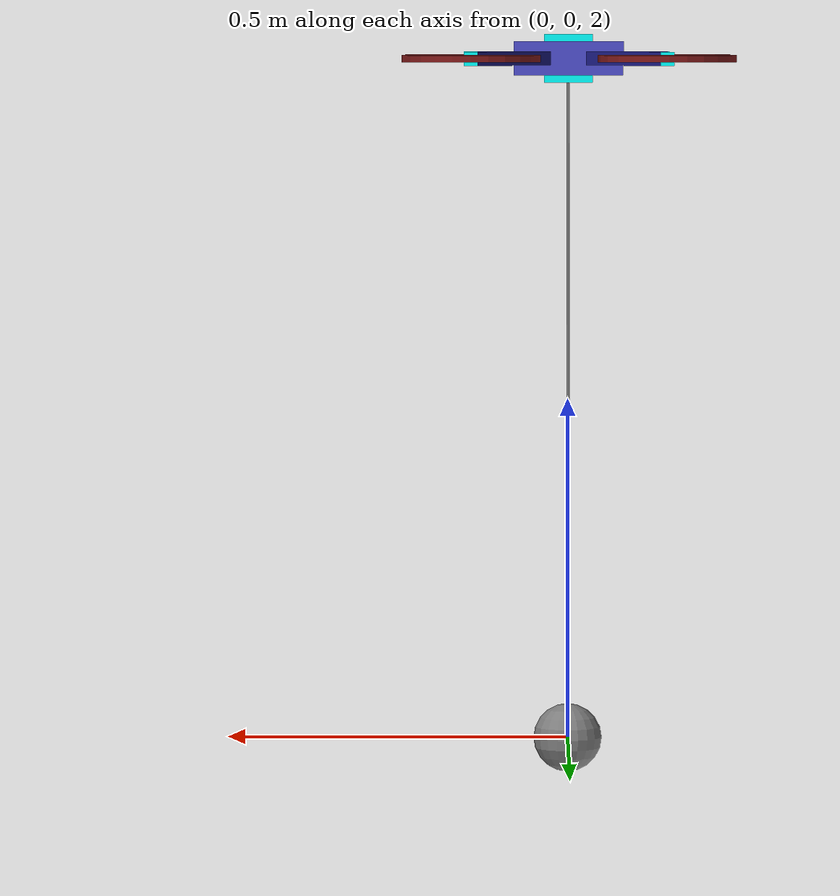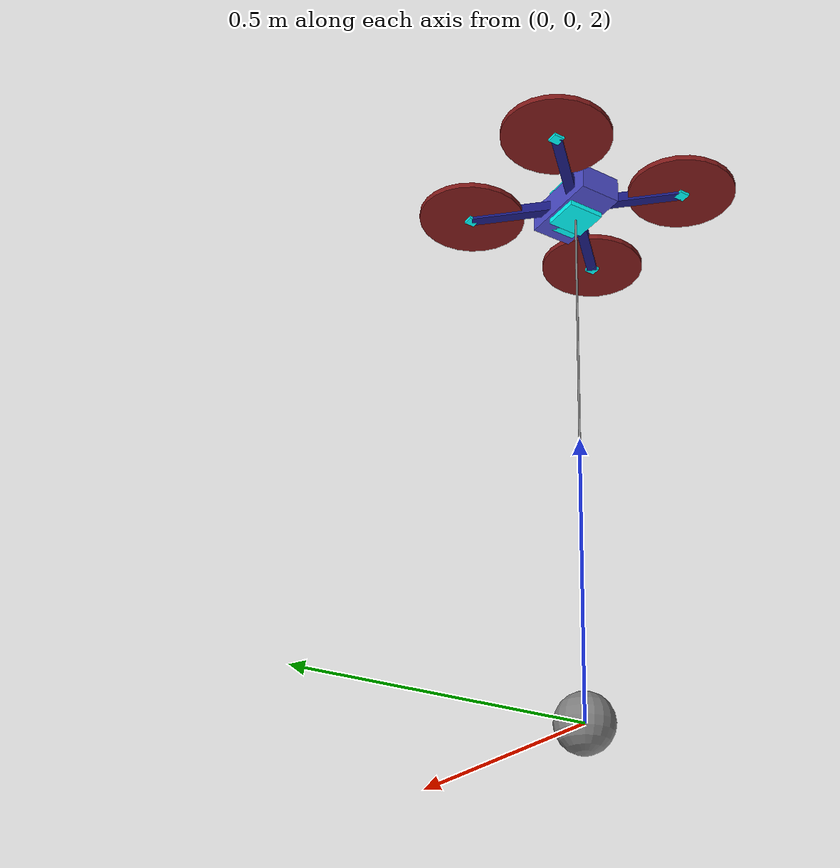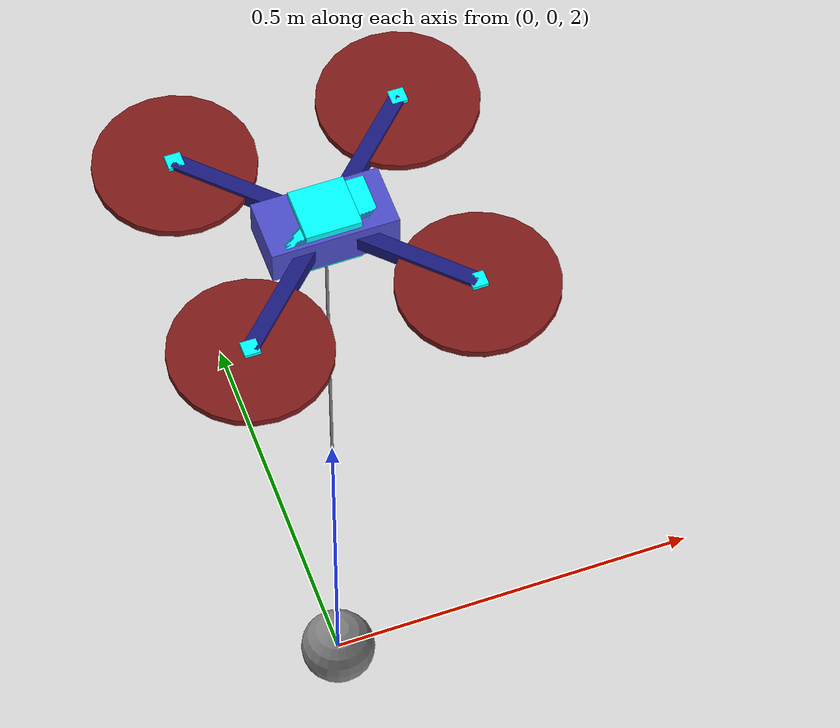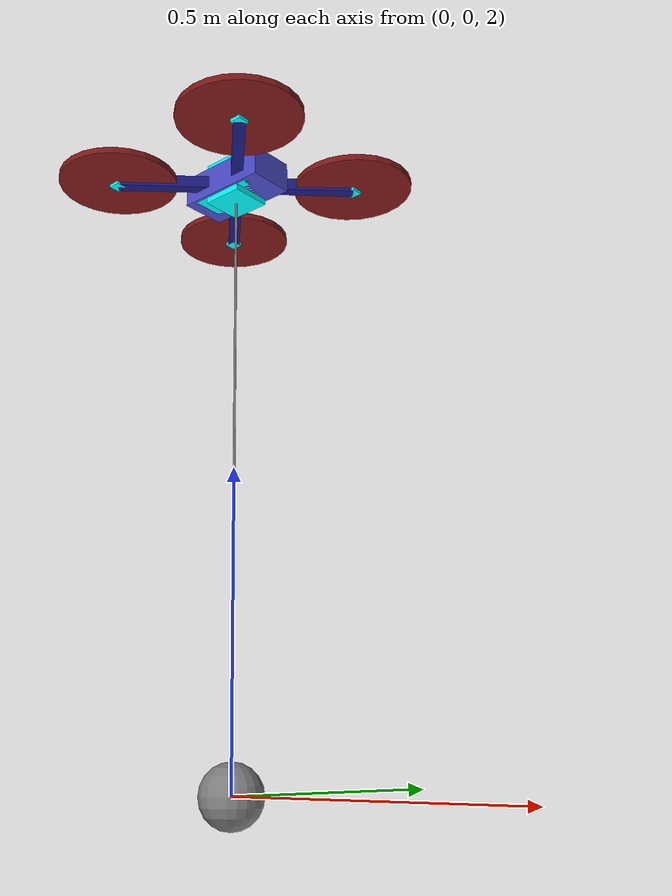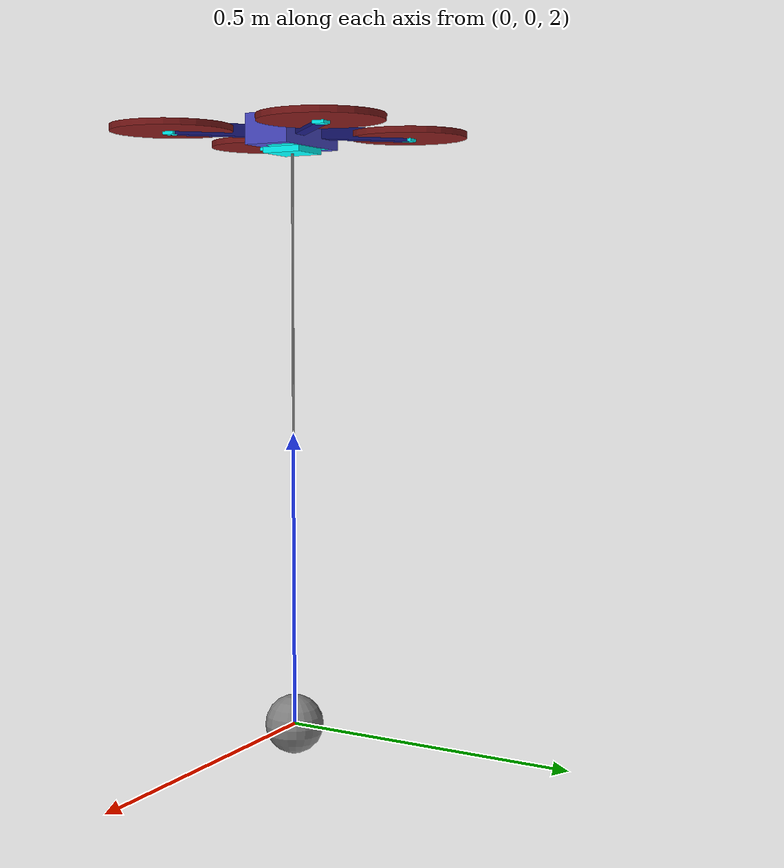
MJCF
<?xml version="1.0"?>
<mujoco model="QuadPayload">
	<option	timestep="0.01" gravity="0 0 -9.81" wind="0 0 0" density="1" viscosity="1e-5" />
  <compiler angle="degree" coordinate="local" inertiafromgeom="false" />
  <visual>
    <map fogstart="3.0" fogend="5.0" force="0.1" znear="0.1" />
  </visual>
  <asset>
    <texture type="skybox" builtin="gradient" rgb1="1.0 1.0 1.0" rgb2="0.6 0.8 1.0" width="256" height="256" />
  </asset>
  <worldbody>
    <geom name="ground" type="plane" size="5.0 5.0 0.02" friction="1.0" pos="0.0 0.0 0.0" rgba="0.8 0.9 0.8 1.0" />
    <light directional="true" diffuse=".9 .9 .9" specular=".3 .3 .3" pos="0 0 4.0" dir="0 0.15 -1" />
    <body name="quadrotor" pos="0.0 0.0 3.0" quat="1 0 0 0">
      <inertial pos="0. 0. 0." mass="0.75" diaginertia="0.0053 0.0049 0.0098" />
      <geom name="geom" type="box" pos="0.0 0.0 0.0" quat="1 0 0 0" size="0.08 0.04 0.025"
        rgba="0.3 0.3 0.8 1.0" />
      <site name="end1" pos="0.0 0 0.0" type="sphere" size="0.01" />
      <joint name="root_joint" type="free" limited="false" pos="0.0 0.0 0.0" axis="0.0 0.0 1.0"
        range="-1.0 1.0" armature="0.0" damping="0.0" stiffness="0.0" />

      <geom name="rotor_arm_geom_0" type="box" pos="0.0 0.0 0.0" quat="0.92388 0 0 0.382683"
        size="0.2 0.01 0.01" rgba="0.1 0.1 0.5 1.0" />
      <geom name="rotor_prop_geom_0" type="cylinder" size="0.1 0.005"
        pos="0.1414213562373095 0.14142135623730953 0.0" rgba="0.5 0.1 0.1 1.0" />

      <geom name="rotor_arm_geom_1" type="box" pos="0.0 0.0 0.0" quat="0.382683 0 0 0.92388"
        size="0.2 0.01 0.01" rgba="0.1 0.1 0.5 1.0" />
      <geom name="rotor_prop_geom_1" type="cylinder" size="0.1 0.005"
        pos="-0.1414213562373095 0.14142135623730953 0.0" rgba="0.5 0.1 0.1 1.0" />

      <geom name="rotor_arm_geom_2" type="box" pos="0.0 0.0 0.0" quat="-0.382683 0 0 0.92388"
        size="0.2 0.01 0.01" rgba="0.1 0.1 0.5 1.0" />
      <geom name="rotor_prop_geom_2" type="cylinder" size="0.1 0.005"
        pos="-0.1414213562373095 -0.1414213562373095 0.0" rgba="0.5 0.1 0.1 1.0" />

      <geom name="rotor_arm_geom_3" type="box" pos="0.0 0.0 0.0" quat="-0.92388 0 0 0.382683"
        size="0.2 0.01 0.01" rgba="0.1 0.1 0.5 1.0" />
      <geom name="rotor_prop_geom_3" type="cylinder" size="0.1 0.005"
        pos="0.1414213562373095 -0.14142135623730953 0.0" rgba="0.5 0.1 0.1 1.0" />

      <site name="site0" type="box" pos="0.1414213562373095 0.14142135623730953 0.0" quat="1 0 0 0"
        size="0.01 0.01 0.01" rgba="0.0 1 1 1.0" />
      <site name="site1" type="box" pos="-0.1414213562373095 0.14142135623730953 0.0" quat="1 0 0 0"
        size="0.01 0.01 0.01" rgba="0.0 1 1 1.0" />
      <site name="site2" type="box" pos="-0.1414213562373095 -0.1414213562373095 0.0" quat="1 0 0 0"
        size="0.01 0.01 0.01" rgba="0.0 1 1 1.0" />
      <site name="site3" type="box" pos="0.14142135623730948 -0.14142135623730956 0.0"
        quat="1 0 0 0" size="0.01 0.01 0.01" rgba="0.0 1 1 1.0" />
      <site name="quadrotor_thrust" type="box" pos="0.0 0.0 0.0" quat="1 0 0 0"
        size="0.035 0.035 0.035" rgba="0.0 1 1 1.0" />
      <site name="quadrotor_Mx" type="box" pos="0.0 0.0 0.0" quat="1 0 0 0" size="0.06 0.035 0.025"
        rgba="0.0 1 1 1.0" />
      <site name="quadrotor_My" type="box" pos="0.0 0.0 0.0" quat="1 0 0 0" size="0.06 0.035 0.025"
        rgba="0.0 1 1 1.0" />
      <site name="quadrotor_Mz" type="box" pos="0.0 0.0 0.0" quat="1 0 0 0" size="0.06 0.035 0.025"
        rgba="0.0 1 1 1.0" />
    </body>
    <body name="payload" pos="0.0 0.0 2.0" quat="1 0 0 0">
      <inertial pos="0. 0. 0." mass="0.15" diaginertia="0.00015 0.00015 0.00015" />
      <geom type="sphere" pos="0. 0. 0.0" size="0.05" />
      <site name="end2" pos="0.0 0 0.0" type="sphere" size="0.01" />
      <joint type="free" />
    </body>
  </worldbody>
  <actuator>
    <motor ctrllimited="true"
      site="quadrotor_thrust" ctrlrange="0.0 40.0" gear="0.0 0.0 1.0 0.0 0.0 0.0" />
    <motor
      ctrllimited="true" site="quadrotor_Mx" ctrlrange="-3.0 3.0" gear="0.0 0.0 0.0 1.0 0.0 0.0" />
    <motor
      ctrllimited="true" site="quadrotor_My" ctrlrange="-3.0 3.0" gear="0.0 0.0 0.0 0.0 1.0 0.0" />
    <motor
      ctrllimited="true" site="quadrotor_Mz" ctrlrange="-3.0 3.0" gear="0.0 0.0 0.0 0.0 0.0 1.0" />
    <motor ctrllimited="true" site="site0" ctrlrange="0.0 10.0"
      gear="0. 0. 1. 0. 0. -.024994577607878814" /> # each propeller can generate a force of 10N <motor
      ctrllimited="true" site="site1" ctrlrange="0.0 10.0" gear="0. 0. 1. 0. 0. .024994577607878814" />
    <motor
      ctrllimited="true" site="site2" ctrlrange="0.0 10.0"
      gear="0. 0. 1. 0. 0. -.024994577607878814" />
    <motor ctrllimited="true" site="site3"
      ctrlrange="0.0 10.0" gear="0. 0. 1. 0. 0. .024994577607878814" />
  </actuator>
  <tendon>
    <spatial limited="true" range="0 1.0" damping="0." stiffness="0" width="0.002">
      <site site="end1" />
      <site site="end2" />
    </spatial>
  </tendon>
  <sensor>
    <force site="end1"/>
    <force site="end2"/>
  </sensor>
</mujoco>
